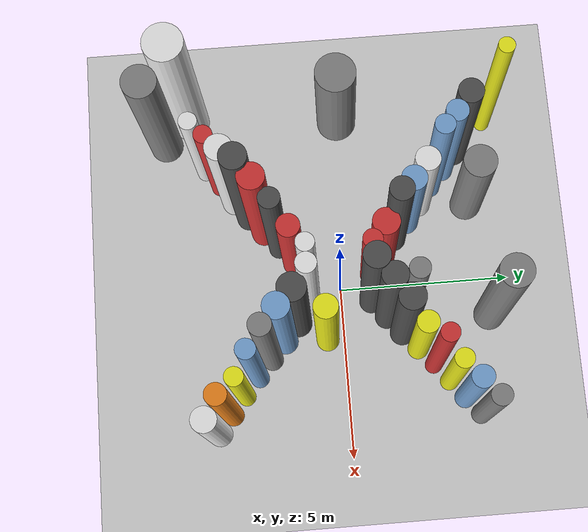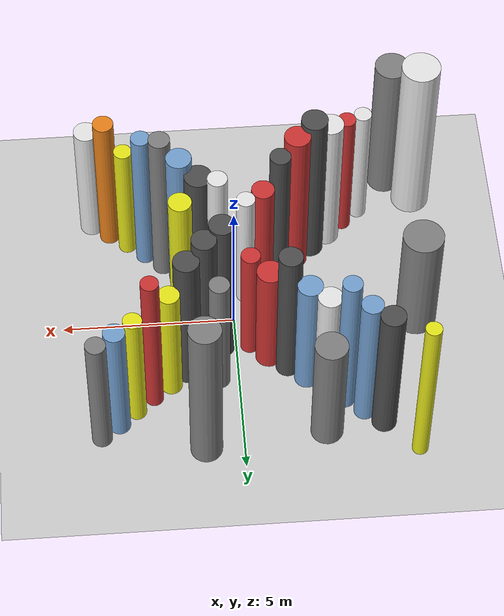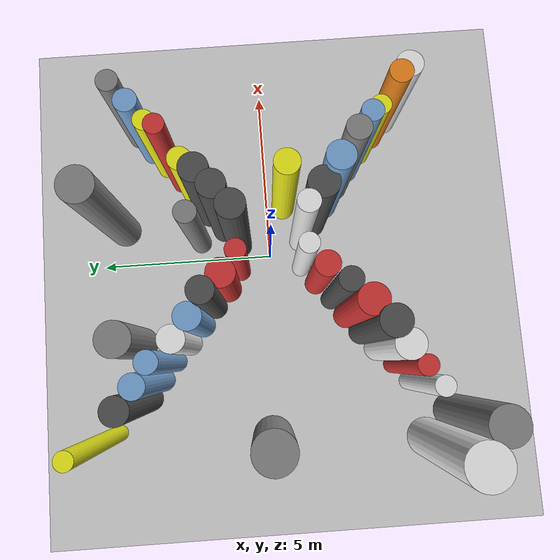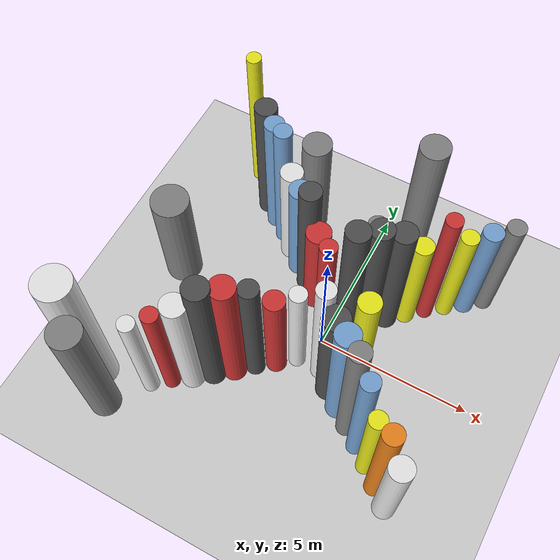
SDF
<?xml version='1.0'?>
<sdf version='1.6'>
  <world name='routeA_rl_v1__dense_recovery__rl_val__bottleneck_corridor__000101'>
    <!-- Sun light -->
    <light name='sun' type='directional'>
      <cast_shadows>1</cast_shadows>
      <pose>0 0 10 0 0 0</pose>
      <diffuse>0.8 0.8 0.8 1</diffuse>
      <specular>0.2 0.2 0.2 1</specular>
      <attenuation>
        <range>1000</range>
        <constant>0.9</constant>
        <linear>0.01</linear>
        <quadratic>0.001</quadratic>
      </attenuation>
      <direction>-0.5 0.1 -0.9</direction>
    </light>

    <!-- Ground plane -->
    <model name='ground_plane'>
      <static>1</static>
      <link name='link'>
        <collision name='collision'>
          <geometry>
            <plane>
              <normal>0 0 1</normal>
              <size>100 100</size>
            </plane>
          </geometry>
          <surface>
            <contact>
              <collide_bitmask>65535</collide_bitmask>
              <ode/>
            </contact>
            <friction>
              <ode>
                <mu>100</mu>
                <mu2>50</mu2>
              </ode>
              <torsional><ode/></torsional>
            </friction>
            <bounce/>
          </surface>
          <max_contacts>10</max_contacts>
        </collision>
        <visual name='visual'>
          <cast_shadows>0</cast_shadows>
          <geometry>
            <plane>
              <normal>0 0 1</normal>
              <size>100 100</size>
            </plane>
          </geometry>
          <material>
            <script>
              <uri>file://media/materials/scripts/gazebo.material</uri>
              <n>Gazebo/Grey</n>
            </script>
          </material>
        </visual>
      </link>
    </model>

    <!-- Environment -->
    <magnetic_field>6e-06 2.3e-05 -4.2e-05</magnetic_field>
    <atmosphere type='adiabatic'/>
    <physics name='default_physics' default='0' type='ode'>
      <gravity>0 0 -9.8</gravity>
      <max_step_size>0.004</max_step_size>
      <real_time_factor>1</real_time_factor>
      <real_time_update_rate>250</real_time_update_rate>
    </physics>
    <scene>
      <ambient>0.4 0.4 0.4 1</ambient>
      <background>0.7 0.7 0.7 1</background>
      <shadows>1</shadows>
    </scene>
    <wind/>
    <spherical_coordinates>
      <surface_model>EARTH_WGS84</surface_model>
      <latitude_deg>0</latitude_deg>
      <longitude_deg>0</longitude_deg>
      <elevation>0</elevation>
      <heading_deg>0</heading_deg>
    </spherical_coordinates>

    <!-- ============ OBSTACLES (40) ============ -->
    <model name='funnel_l_0'>
      <static>1</static>
      <link name='link'>
        <visual name='visual'>
          <geometry>
            <cylinder>
              <radius>0.2576</radius>
              <length>4.5161</length>
            </cylinder>
          </geometry>
          <material>
            <script>
              <n>Gazebo/White</n>
              <uri>file://media/materials/scripts/gazebo.material</uri>
            </script>
            <ambient>0.9 0.9 0.9 1</ambient>
          </material>
        </visual>
        <collision name='collision'>
          <geometry>
            <cylinder>
              <radius>0.2576</radius>
              <length>4.5161</length>
            </cylinder>
          </geometry>
          <max_contacts>10</max_contacts>
          <surface>
            <contact><ode/></contact>
            <bounce/>
            <friction>
              <ode><mu>1</mu><mu2>1</mu2></ode>
              <torsional><ode/></torsional>
            </friction>
          </surface>
        </collision>
      </link>
      <pose>-4.0000 -3.8000 2.2580 0 0 0.0000</pose>
    </model>

    <model name='funnel_r_0'>
      <static>1</static>
      <link name='link'>
        <visual name='visual'>
          <geometry>
            <cylinder>
              <radius>0.3536</radius>
              <length>5.1738</length>
            </cylinder>
          </geometry>
          <material>
            <script>
              <n>Gazebo/DarkGrey</n>
              <uri>file://media/materials/scripts/gazebo.material</uri>
            </script>
            <ambient>0.3 0.3 0.3 1</ambient>
          </material>
        </visual>
        <collision name='collision'>
          <geometry>
            <cylinder>
              <radius>0.3536</radius>
              <length>5.1738</length>
            </cylinder>
          </geometry>
          <max_contacts>10</max_contacts>
          <surface>
            <contact><ode/></contact>
            <bounce/>
            <friction>
              <ode><mu>1</mu><mu2>1</mu2></ode>
              <torsional><ode/></torsional>
            </friction>
          </surface>
        </collision>
      </link>
      <pose>-4.0000 3.8000 2.5869 0 0 0.0000</pose>
    </model>

    <model name='funnel_l_1'>
      <static>1</static>
      <link name='link'>
        <visual name='visual'>
          <geometry>
            <cylinder>
              <radius>0.2592</radius>
              <length>4.8091</length>
            </cylinder>
          </geometry>
          <material>
            <script>
              <n>Gazebo/Red</n>
              <uri>file://media/materials/scripts/gazebo.material</uri>
            </script>
            <ambient>0.8 0.2 0.2 1</ambient>
          </material>
        </visual>
        <collision name='collision'>
          <geometry>
            <cylinder>
              <radius>0.2592</radius>
              <length>4.8091</length>
            </cylinder>
          </geometry>
          <max_contacts>10</max_contacts>
          <surface>
            <contact><ode/></contact>
            <bounce/>
            <friction>
              <ode><mu>1</mu><mu2>1</mu2></ode>
              <torsional><ode/></torsional>
            </friction>
          </surface>
        </collision>
      </link>
      <pose>-3.4857 -3.3857 2.4045 0 0 0.0000</pose>
    </model>

    <model name='funnel_r_1'>
      <static>1</static>
      <link name='link'>
        <visual name='visual'>
          <geometry>
            <cylinder>
              <radius>0.3136</radius>
              <length>5.1695</length>
            </cylinder>
          </geometry>
          <material>
            <script>
              <n>Gazebo/Blue</n>
              <uri>file://media/materials/scripts/gazebo.material</uri>
            </script>
            <ambient>0.447 0.624 0.812 1</ambient>
          </material>
        </visual>
        <collision name='collision'>
          <geometry>
            <cylinder>
              <radius>0.3136</radius>
              <length>5.1695</length>
            </cylinder>
          </geometry>
          <max_contacts>10</max_contacts>
          <surface>
            <contact><ode/></contact>
            <bounce/>
            <friction>
              <ode><mu>1</mu><mu2>1</mu2></ode>
              <torsional><ode/></torsional>
            </friction>
          </surface>
        </collision>
      </link>
      <pose>-3.4857 3.3857 2.5848 0 0 0.0000</pose>
    </model>

    <model name='funnel_l_2'>
      <static>1</static>
      <link name='link'>
        <visual name='visual'>
          <geometry>
            <cylinder>
              <radius>0.3794</radius>
              <length>5.1359</length>
            </cylinder>
          </geometry>
          <material>
            <script>
              <n>Gazebo/White</n>
              <uri>file://media/materials/scripts/gazebo.material</uri>
            </script>
            <ambient>0.9 0.9 0.9 1</ambient>
          </material>
        </visual>
        <collision name='collision'>
          <geometry>
            <cylinder>
              <radius>0.3794</radius>
              <length>5.1359</length>
            </cylinder>
          </geometry>
          <max_contacts>10</max_contacts>
          <surface>
            <contact><ode/></contact>
            <bounce/>
            <friction>
              <ode><mu>1</mu><mu2>1</mu2></ode>
              <torsional><ode/></torsional>
            </friction>
          </surface>
        </collision>
      </link>
      <pose>-2.9714 -2.9714 2.5680 0 0 0.0000</pose>
    </model>

    <model name='funnel_r_2'>
      <static>1</static>
      <link name='link'>
        <visual name='visual'>
          <geometry>
            <cylinder>
              <radius>0.2806</radius>
              <length>5.6014</length>
            </cylinder>
          </geometry>
          <material>
            <script>
              <n>Gazebo/Blue</n>
              <uri>file://media/materials/scripts/gazebo.material</uri>
            </script>
            <ambient>0.447 0.624 0.812 1</ambient>
          </material>
        </visual>
        <collision name='collision'>
          <geometry>
            <cylinder>
              <radius>0.2806</radius>
              <length>5.6014</length>
            </cylinder>
          </geometry>
          <max_contacts>10</max_contacts>
          <surface>
            <contact><ode/></contact>
            <bounce/>
            <friction>
              <ode><mu>1</mu><mu2>1</mu2></ode>
              <torsional><ode/></torsional>
            </friction>
          </surface>
        </collision>
      </link>
      <pose>-2.9714 2.9714 2.8007 0 0 0.0000</pose>
    </model>

    <model name='funnel_l_3'>
      <static>1</static>
      <link name='link'>
        <visual name='visual'>
          <geometry>
            <cylinder>
              <radius>0.3819</radius>
              <length>5.8641</length>
            </cylinder>
          </geometry>
          <material>
            <script>
              <n>Gazebo/DarkGrey</n>
              <uri>file://media/materials/scripts/gazebo.material</uri>
            </script>
            <ambient>0.3 0.3 0.3 1</ambient>
          </material>
        </visual>
        <collision name='collision'>
          <geometry>
            <cylinder>
              <radius>0.3819</radius>
              <length>5.8641</length>
            </cylinder>
          </geometry>
          <max_contacts>10</max_contacts>
          <surface>
            <contact><ode/></contact>
            <bounce/>
            <friction>
              <ode><mu>1</mu><mu2>1</mu2></ode>
              <torsional><ode/></torsional>
            </friction>
          </surface>
        </collision>
      </link>
      <pose>-2.4571 -2.5571 2.9321 0 0 0.0000</pose>
    </model>

    <model name='funnel_r_3'>
      <static>1</static>
      <link name='link'>
        <visual name='visual'>
          <geometry>
            <cylinder>
              <radius>0.3521</radius>
              <length>4.4642</length>
            </cylinder>
          </geometry>
          <material>
            <script>
              <n>Gazebo/White</n>
              <uri>file://media/materials/scripts/gazebo.material</uri>
            </script>
            <ambient>0.9 0.9 0.9 1</ambient>
          </material>
        </visual>
        <collision name='collision'>
          <geometry>
            <cylinder>
              <radius>0.3521</radius>
              <length>4.4642</length>
            </cylinder>
          </geometry>
          <max_contacts>10</max_contacts>
          <surface>
            <contact><ode/></contact>
            <bounce/>
            <friction>
              <ode><mu>1</mu><mu2>1</mu2></ode>
              <torsional><ode/></torsional>
            </friction>
          </surface>
        </collision>
      </link>
      <pose>-2.4571 2.5571 2.2321 0 0 0.0000</pose>
    </model>

    <model name='funnel_l_4'>
      <static>1</static>
      <link name='link'>
        <visual name='visual'>
          <geometry>
            <cylinder>
              <radius>0.3793</radius>
              <length>5.6824</length>
            </cylinder>
          </geometry>
          <material>
            <script>
              <n>Gazebo/Red</n>
              <uri>file://media/materials/scripts/gazebo.material</uri>
            </script>
            <ambient>0.8 0.2 0.2 1</ambient>
          </material>
        </visual>
        <collision name='collision'>
          <geometry>
            <cylinder>
              <radius>0.3793</radius>
              <length>5.6824</length>
            </cylinder>
          </geometry>
          <max_contacts>10</max_contacts>
          <surface>
            <contact><ode/></contact>
            <bounce/>
            <friction>
              <ode><mu>1</mu><mu2>1</mu2></ode>
              <torsional><ode/></torsional>
            </friction>
          </surface>
        </collision>
      </link>
      <pose>-1.9429 -2.1429 2.8412 0 0 0.0000</pose>
    </model>

    <model name='funnel_r_4'>
      <static>1</static>
      <link name='link'>
        <visual name='visual'>
          <geometry>
            <cylinder>
              <radius>0.3583</radius>
              <length>4.4724</length>
            </cylinder>
          </geometry>
          <material>
            <script>
              <n>Gazebo/Blue</n>
              <uri>file://media/materials/scripts/gazebo.material</uri>
            </script>
            <ambient>0.447 0.624 0.812 1</ambient>
          </material>
        </visual>
        <collision name='collision'>
          <geometry>
            <cylinder>
              <radius>0.3583</radius>
              <length>4.4724</length>
            </cylinder>
          </geometry>
          <max_contacts>10</max_contacts>
          <surface>
            <contact><ode/></contact>
            <bounce/>
            <friction>
              <ode><mu>1</mu><mu2>1</mu2></ode>
              <torsional><ode/></torsional>
            </friction>
          </surface>
        </collision>
      </link>
      <pose>-1.9429 2.1429 2.2362 0 0 0.0000</pose>
    </model>

    <model name='funnel_l_5'>
      <static>1</static>
      <link name='link'>
        <visual name='visual'>
          <geometry>
            <cylinder>
              <radius>0.3016</radius>
              <length>5.3567</length>
            </cylinder>
          </geometry>
          <material>
            <script>
              <n>Gazebo/DarkGrey</n>
              <uri>file://media/materials/scripts/gazebo.material</uri>
            </script>
            <ambient>0.3 0.3 0.3 1</ambient>
          </material>
        </visual>
        <collision name='collision'>
          <geometry>
            <cylinder>
              <radius>0.3016</radius>
              <length>5.3567</length>
            </cylinder>
          </geometry>
          <max_contacts>10</max_contacts>
          <surface>
            <contact><ode/></contact>
            <bounce/>
            <friction>
              <ode><mu>1</mu><mu2>1</mu2></ode>
              <torsional><ode/></torsional>
            </friction>
          </surface>
        </collision>
      </link>
      <pose>-1.4286 -1.7286 2.6783 0 0 0.0000</pose>
    </model>

    <model name='funnel_r_5'>
      <static>1</static>
      <link name='link'>
        <visual name='visual'>
          <geometry>
            <cylinder>
              <radius>0.3402</radius>
              <length>5.2886</length>
            </cylinder>
          </geometry>
          <material>
            <script>
              <n>Gazebo/DarkGrey</n>
              <uri>file://media/materials/scripts/gazebo.material</uri>
            </script>
            <ambient>0.3 0.3 0.3 1</ambient>
          </material>
        </visual>
        <collision name='collision'>
          <geometry>
            <cylinder>
              <radius>0.3402</radius>
              <length>5.2886</length>
            </cylinder>
          </geometry>
          <max_contacts>10</max_contacts>
          <surface>
            <contact><ode/></contact>
            <bounce/>
            <friction>
              <ode><mu>1</mu><mu2>1</mu2></ode>
              <torsional><ode/></torsional>
            </friction>
          </surface>
        </collision>
      </link>
      <pose>-1.4286 1.7286 2.6443 0 0 0.0000</pose>
    </model>

    <model name='funnel_l_6'>
      <static>1</static>
      <link name='link'>
        <visual name='visual'>
          <geometry>
            <cylinder>
              <radius>0.3293</radius>
              <length>4.4319</length>
            </cylinder>
          </geometry>
          <material>
            <script>
              <n>Gazebo/Red</n>
              <uri>file://media/materials/scripts/gazebo.material</uri>
            </script>
            <ambient>0.8 0.2 0.2 1</ambient>
          </material>
        </visual>
        <collision name='collision'>
          <geometry>
            <cylinder>
              <radius>0.3293</radius>
              <length>4.4319</length>
            </cylinder>
          </geometry>
          <max_contacts>10</max_contacts>
          <surface>
            <contact><ode/></contact>
            <bounce/>
            <friction>
              <ode><mu>1</mu><mu2>1</mu2></ode>
              <torsional><ode/></torsional>
            </friction>
          </surface>
        </collision>
      </link>
      <pose>-0.9143 -1.3143 2.2159 0 0 0.0000</pose>
    </model>

    <model name='funnel_r_6'>
      <static>1</static>
      <link name='link'>
        <visual name='visual'>
          <geometry>
            <cylinder>
              <radius>0.3850</radius>
              <length>4.1006</length>
            </cylinder>
          </geometry>
          <material>
            <script>
              <n>Gazebo/Red</n>
              <uri>file://media/materials/scripts/gazebo.material</uri>
            </script>
            <ambient>0.8 0.2 0.2 1</ambient>
          </material>
        </visual>
        <collision name='collision'>
          <geometry>
            <cylinder>
              <radius>0.3850</radius>
              <length>4.1006</length>
            </cylinder>
          </geometry>
          <max_contacts>10</max_contacts>
          <surface>
            <contact><ode/></contact>
            <bounce/>
            <friction>
              <ode><mu>1</mu><mu2>1</mu2></ode>
              <torsional><ode/></torsional>
            </friction>
          </surface>
        </collision>
      </link>
      <pose>-0.9143 1.3143 2.0503 0 0 0.0000</pose>
    </model>

    <model name='funnel_l_7'>
      <static>1</static>
      <link name='link'>
        <visual name='visual'>
          <geometry>
            <cylinder>
              <radius>0.2663</radius>
              <length>4.5700</length>
            </cylinder>
          </geometry>
          <material>
            <script>
              <n>Gazebo/White</n>
              <uri>file://media/materials/scripts/gazebo.material</uri>
            </script>
            <ambient>0.9 0.9 0.9 1</ambient>
          </material>
        </visual>
        <collision name='collision'>
          <geometry>
            <cylinder>
              <radius>0.2663</radius>
              <length>4.5700</length>
            </cylinder>
          </geometry>
          <max_contacts>10</max_contacts>
          <surface>
            <contact><ode/></contact>
            <bounce/>
            <friction>
              <ode><mu>1</mu><mu2>1</mu2></ode>
              <torsional><ode/></torsional>
            </friction>
          </surface>
        </collision>
      </link>
      <pose>-0.4000 -0.9000 2.2850 0 0 0.0000</pose>
    </model>

    <model name='funnel_r_7'>
      <static>1</static>
      <link name='link'>
        <visual name='visual'>
          <geometry>
            <cylinder>
              <radius>0.2768</radius>
              <length>4.3424</length>
            </cylinder>
          </geometry>
          <material>
            <script>
              <n>Gazebo/Red</n>
              <uri>file://media/materials/scripts/gazebo.material</uri>
            </script>
            <ambient>0.8 0.2 0.2 1</ambient>
          </material>
        </visual>
        <collision name='collision'>
          <geometry>
            <cylinder>
              <radius>0.2768</radius>
              <length>4.3424</length>
            </cylinder>
          </geometry>
          <max_contacts>10</max_contacts>
          <surface>
            <contact><ode/></contact>
            <bounce/>
            <friction>
              <ode><mu>1</mu><mu2>1</mu2></ode>
              <torsional><ode/></torsional>
            </friction>
          </surface>
        </collision>
      </link>
      <pose>-0.4000 0.9000 2.1712 0 0 0.0000</pose>
    </model>

    <model name='funnel_out_l_0'>
      <static>1</static>
      <link name='link'>
        <visual name='visual'>
          <geometry>
            <cylinder>
              <radius>0.2866</radius>
              <length>5.5627</length>
            </cylinder>
          </geometry>
          <material>
            <script>
              <n>Gazebo/White</n>
              <uri>file://media/materials/scripts/gazebo.material</uri>
            </script>
            <ambient>0.9 0.9 0.9 1</ambient>
          </material>
        </visual>
        <collision name='collision'>
          <geometry>
            <cylinder>
              <radius>0.2866</radius>
              <length>5.5627</length>
            </cylinder>
          </geometry>
          <max_contacts>10</max_contacts>
          <surface>
            <contact><ode/></contact>
            <bounce/>
            <friction>
              <ode><mu>1</mu><mu2>1</mu2></ode>
              <torsional><ode/></torsional>
            </friction>
          </surface>
        </collision>
      </link>
      <pose>0.4000 -0.9000 2.7813 0 0 0.0000</pose>
    </model>

    <model name='funnel_out_r_0'>
      <static>1</static>
      <link name='link'>
        <visual name='visual'>
          <geometry>
            <cylinder>
              <radius>0.3644</radius>
              <length>5.8134</length>
            </cylinder>
          </geometry>
          <material>
            <script>
              <n>Gazebo/DarkGrey</n>
              <uri>file://media/materials/scripts/gazebo.material</uri>
            </script>
            <ambient>0.3 0.3 0.3 1</ambient>
          </material>
        </visual>
        <collision name='collision'>
          <geometry>
            <cylinder>
              <radius>0.3644</radius>
              <length>5.8134</length>
            </cylinder>
          </geometry>
          <max_contacts>10</max_contacts>
          <surface>
            <contact><ode/></contact>
            <bounce/>
            <friction>
              <ode><mu>1</mu><mu2>1</mu2></ode>
              <torsional><ode/></torsional>
            </friction>
          </surface>
        </collision>
      </link>
      <pose>0.4000 0.9000 2.9067 0 0 0.0000</pose>
    </model>

    <model name='funnel_out_l_1'>
      <static>1</static>
      <link name='link'>
        <visual name='visual'>
          <geometry>
            <cylinder>
              <radius>0.3992</radius>
              <length>5.2027</length>
            </cylinder>
          </geometry>
          <material>
            <script>
              <n>Gazebo/DarkGrey</n>
              <uri>file://media/materials/scripts/gazebo.material</uri>
            </script>
            <ambient>0.3 0.3 0.3 1</ambient>
          </material>
        </visual>
        <collision name='collision'>
          <geometry>
            <cylinder>
              <radius>0.3992</radius>
              <length>5.2027</length>
            </cylinder>
          </geometry>
          <max_contacts>10</max_contacts>
          <surface>
            <contact><ode/></contact>
            <bounce/>
            <friction>
              <ode><mu>1</mu><mu2>1</mu2></ode>
              <torsional><ode/></torsional>
            </friction>
          </surface>
        </collision>
      </link>
      <pose>0.9143 -1.3143 2.6013 0 0 0.0000</pose>
    </model>

    <model name='funnel_out_r_1'>
      <static>1</static>
      <link name='link'>
        <visual name='visual'>
          <geometry>
            <cylinder>
              <radius>0.3561</radius>
              <length>5.7254</length>
            </cylinder>
          </geometry>
          <material>
            <script>
              <n>Gazebo/DarkGrey</n>
              <uri>file://media/materials/scripts/gazebo.material</uri>
            </script>
            <ambient>0.3 0.3 0.3 1</ambient>
          </material>
        </visual>
        <collision name='collision'>
          <geometry>
            <cylinder>
              <radius>0.3561</radius>
              <length>5.7254</length>
            </cylinder>
          </geometry>
          <max_contacts>10</max_contacts>
          <surface>
            <contact><ode/></contact>
            <bounce/>
            <friction>
              <ode><mu>1</mu><mu2>1</mu2></ode>
              <torsional><ode/></torsional>
            </friction>
          </surface>
        </collision>
      </link>
      <pose>0.9143 1.3143 2.8627 0 0 0.0000</pose>
    </model>

    <model name='funnel_out_l_2'>
      <static>1</static>
      <link name='link'>
        <visual name='visual'>
          <geometry>
            <cylinder>
              <radius>0.3671</radius>
              <length>5.5286</length>
            </cylinder>
          </geometry>
          <material>
            <script>
              <n>Gazebo/Blue</n>
              <uri>file://media/materials/scripts/gazebo.material</uri>
            </script>
            <ambient>0.447 0.624 0.812 1</ambient>
          </material>
        </visual>
        <collision name='collision'>
          <geometry>
            <cylinder>
              <radius>0.3671</radius>
              <length>5.5286</length>
            </cylinder>
          </geometry>
          <max_contacts>10</max_contacts>
          <surface>
            <contact><ode/></contact>
            <bounce/>
            <friction>
              <ode><mu>1</mu><mu2>1</mu2></ode>
              <torsional><ode/></torsional>
            </friction>
          </surface>
        </collision>
      </link>
      <pose>1.4286 -1.7286 2.7643 0 0 0.0000</pose>
    </model>

    <model name='funnel_out_r_2'>
      <static>1</static>
      <link name='link'>
        <visual name='visual'>
          <geometry>
            <cylinder>
              <radius>0.3701</radius>
              <length>5.3523</length>
            </cylinder>
          </geometry>
          <material>
            <script>
              <n>Gazebo/DarkGrey</n>
              <uri>file://media/materials/scripts/gazebo.material</uri>
            </script>
            <ambient>0.3 0.3 0.3 1</ambient>
          </material>
        </visual>
        <collision name='collision'>
          <geometry>
            <cylinder>
              <radius>0.3701</radius>
              <length>5.3523</length>
            </cylinder>
          </geometry>
          <max_contacts>10</max_contacts>
          <surface>
            <contact><ode/></contact>
            <bounce/>
            <friction>
              <ode><mu>1</mu><mu2>1</mu2></ode>
              <torsional><ode/></torsional>
            </friction>
          </surface>
        </collision>
      </link>
      <pose>1.4286 1.7286 2.6761 0 0 0.0000</pose>
    </model>

    <model name='funnel_out_l_3'>
      <static>1</static>
      <link name='link'>
        <visual name='visual'>
          <geometry>
            <cylinder>
              <radius>0.3093</radius>
              <length>5.8774</length>
            </cylinder>
          </geometry>
          <material>
            <script>
              <n>Gazebo/Grey</n>
              <uri>file://media/materials/scripts/gazebo.material</uri>
            </script>
            <ambient>0.5 0.5 0.5 1</ambient>
          </material>
        </visual>
        <collision name='collision'>
          <geometry>
            <cylinder>
              <radius>0.3093</radius>
              <length>5.8774</length>
            </cylinder>
          </geometry>
          <max_contacts>10</max_contacts>
          <surface>
            <contact><ode/></contact>
            <bounce/>
            <friction>
              <ode><mu>1</mu><mu2>1</mu2></ode>
              <torsional><ode/></torsional>
            </friction>
          </surface>
        </collision>
      </link>
      <pose>1.9429 -2.1429 2.9387 0 0 0.0000</pose>
    </model>

    <model name='funnel_out_r_3'>
      <static>1</static>
      <link name='link'>
        <visual name='visual'>
          <geometry>
            <cylinder>
              <radius>0.3078</radius>
              <length>4.4324</length>
            </cylinder>
          </geometry>
          <material>
            <script>
              <n>Gazebo/Yellow</n>
              <uri>file://media/materials/scripts/gazebo.material</uri>
            </script>
            <ambient>0.9 0.9 0.1 1</ambient>
          </material>
        </visual>
        <collision name='collision'>
          <geometry>
            <cylinder>
              <radius>0.3078</radius>
              <length>4.4324</length>
            </cylinder>
          </geometry>
          <max_contacts>10</max_contacts>
          <surface>
            <contact><ode/></contact>
            <bounce/>
            <friction>
              <ode><mu>1</mu><mu2>1</mu2></ode>
              <torsional><ode/></torsional>
            </friction>
          </surface>
        </collision>
      </link>
      <pose>1.9429 2.1429 2.2162 0 0 0.0000</pose>
    </model>

    <model name='funnel_out_l_4'>
      <static>1</static>
      <link name='link'>
        <visual name='visual'>
          <geometry>
            <cylinder>
              <radius>0.2750</radius>
              <length>5.4844</length>
            </cylinder>
          </geometry>
          <material>
            <script>
              <n>Gazebo/Blue</n>
              <uri>file://media/materials/scripts/gazebo.material</uri>
            </script>
            <ambient>0.447 0.624 0.812 1</ambient>
          </material>
        </visual>
        <collision name='collision'>
          <geometry>
            <cylinder>
              <radius>0.2750</radius>
              <length>5.4844</length>
            </cylinder>
          </geometry>
          <max_contacts>10</max_contacts>
          <surface>
            <contact><ode/></contact>
            <bounce/>
            <friction>
              <ode><mu>1</mu><mu2>1</mu2></ode>
              <torsional><ode/></torsional>
            </friction>
          </surface>
        </collision>
      </link>
      <pose>2.4571 -2.5571 2.7422 0 0 0.0000</pose>
    </model>

    <model name='funnel_out_r_4'>
      <static>1</static>
      <link name='link'>
        <visual name='visual'>
          <geometry>
            <cylinder>
              <radius>0.2562</radius>
              <length>5.5814</length>
            </cylinder>
          </geometry>
          <material>
            <script>
              <n>Gazebo/Red</n>
              <uri>file://media/materials/scripts/gazebo.material</uri>
            </script>
            <ambient>0.8 0.2 0.2 1</ambient>
          </material>
        </visual>
        <collision name='collision'>
          <geometry>
            <cylinder>
              <radius>0.2562</radius>
              <length>5.5814</length>
            </cylinder>
          </geometry>
          <max_contacts>10</max_contacts>
          <surface>
            <contact><ode/></contact>
            <bounce/>
            <friction>
              <ode><mu>1</mu><mu2>1</mu2></ode>
              <torsional><ode/></torsional>
            </friction>
          </surface>
        </collision>
      </link>
      <pose>2.4571 2.5571 2.7907 0 0 0.0000</pose>
    </model>

    <model name='funnel_out_l_5'>
      <static>1</static>
      <link name='link'>
        <visual name='visual'>
          <geometry>
            <cylinder>
              <radius>0.2642</radius>
              <length>4.4364</length>
            </cylinder>
          </geometry>
          <material>
            <script>
              <n>Gazebo/Yellow</n>
              <uri>file://media/materials/scripts/gazebo.material</uri>
            </script>
            <ambient>0.9 0.9 0.1 1</ambient>
          </material>
        </visual>
        <collision name='collision'>
          <geometry>
            <cylinder>
              <radius>0.2642</radius>
              <length>4.4364</length>
            </cylinder>
          </geometry>
          <max_contacts>10</max_contacts>
          <surface>
            <contact><ode/></contact>
            <bounce/>
            <friction>
              <ode><mu>1</mu><mu2>1</mu2></ode>
              <torsional><ode/></torsional>
            </friction>
          </surface>
        </collision>
      </link>
      <pose>2.9714 -2.9714 2.2182 0 0 0.0000</pose>
    </model>

    <model name='funnel_out_r_5'>
      <static>1</static>
      <link name='link'>
        <visual name='visual'>
          <geometry>
            <cylinder>
              <radius>0.2714</radius>
              <length>4.4904</length>
            </cylinder>
          </geometry>
          <material>
            <script>
              <n>Gazebo/Yellow</n>
              <uri>file://media/materials/scripts/gazebo.material</uri>
            </script>
            <ambient>0.9 0.9 0.1 1</ambient>
          </material>
        </visual>
        <collision name='collision'>
          <geometry>
            <cylinder>
              <radius>0.2714</radius>
              <length>4.4904</length>
            </cylinder>
          </geometry>
          <max_contacts>10</max_contacts>
          <surface>
            <contact><ode/></contact>
            <bounce/>
            <friction>
              <ode><mu>1</mu><mu2>1</mu2></ode>
              <torsional><ode/></torsional>
            </friction>
          </surface>
        </collision>
      </link>
      <pose>2.9714 2.9714 2.2452 0 0 0.0000</pose>
    </model>

    <model name='funnel_out_l_6'>
      <static>1</static>
      <link name='link'>
        <visual name='visual'>
          <geometry>
            <cylinder>
              <radius>0.2993</radius>
              <length>5.2123</length>
            </cylinder>
          </geometry>
          <material>
            <script>
              <n>Gazebo/Orange</n>
              <uri>file://media/materials/scripts/gazebo.material</uri>
            </script>
            <ambient>0.9 0.5 0.1 1</ambient>
          </material>
        </visual>
        <collision name='collision'>
          <geometry>
            <cylinder>
              <radius>0.2993</radius>
              <length>5.2123</length>
            </cylinder>
          </geometry>
          <max_contacts>10</max_contacts>
          <surface>
            <contact><ode/></contact>
            <bounce/>
            <friction>
              <ode><mu>1</mu><mu2>1</mu2></ode>
              <torsional><ode/></torsional>
            </friction>
          </surface>
        </collision>
      </link>
      <pose>3.4857 -3.3857 2.6061 0 0 0.0000</pose>
    </model>

    <model name='funnel_out_r_6'>
      <static>1</static>
      <link name='link'>
        <visual name='visual'>
          <geometry>
            <cylinder>
              <radius>0.3107</radius>
              <length>4.5613</length>
            </cylinder>
          </geometry>
          <material>
            <script>
              <n>Gazebo/Blue</n>
              <uri>file://media/materials/scripts/gazebo.material</uri>
            </script>
            <ambient>0.447 0.624 0.812 1</ambient>
          </material>
        </visual>
        <collision name='collision'>
          <geometry>
            <cylinder>
              <radius>0.3107</radius>
              <length>4.5613</length>
            </cylinder>
          </geometry>
          <max_contacts>10</max_contacts>
          <surface>
            <contact><ode/></contact>
            <bounce/>
            <friction>
              <ode><mu>1</mu><mu2>1</mu2></ode>
              <torsional><ode/></torsional>
            </friction>
          </surface>
        </collision>
      </link>
      <pose>3.4857 3.3857 2.2806 0 0 0.0000</pose>
    </model>

    <model name='funnel_out_l_7'>
      <static>1</static>
      <link name='link'>
        <visual name='visual'>
          <geometry>
            <cylinder>
              <radius>0.3523</radius>
              <length>4.4170</length>
            </cylinder>
          </geometry>
          <material>
            <script>
              <n>Gazebo/White</n>
              <uri>file://media/materials/scripts/gazebo.material</uri>
            </script>
            <ambient>0.9 0.9 0.9 1</ambient>
          </material>
        </visual>
        <collision name='collision'>
          <geometry>
            <cylinder>
              <radius>0.3523</radius>
              <length>4.4170</length>
            </cylinder>
          </geometry>
          <max_contacts>10</max_contacts>
          <surface>
            <contact><ode/></contact>
            <bounce/>
            <friction>
              <ode><mu>1</mu><mu2>1</mu2></ode>
              <torsional><ode/></torsional>
            </friction>
          </surface>
        </collision>
      </link>
      <pose>4.0000 -3.8000 2.2085 0 0 0.0000</pose>
    </model>

    <model name='funnel_out_r_7'>
      <static>1</static>
      <link name='link'>
        <visual name='visual'>
          <geometry>
            <cylinder>
              <radius>0.2885</radius>
              <length>4.6187</length>
            </cylinder>
          </geometry>
          <material>
            <script>
              <n>Gazebo/Grey</n>
              <uri>file://media/materials/scripts/gazebo.material</uri>
            </script>
            <ambient>0.5 0.5 0.5 1</ambient>
          </material>
        </visual>
        <collision name='collision'>
          <geometry>
            <cylinder>
              <radius>0.2885</radius>
              <length>4.6187</length>
            </cylinder>
          </geometry>
          <max_contacts>10</max_contacts>
          <surface>
            <contact><ode/></contact>
            <bounce/>
            <friction>
              <ode><mu>1</mu><mu2>1</mu2></ode>
              <torsional><ode/></torsional>
            </friction>
          </surface>
        </collision>
      </link>
      <pose>4.0000 3.8000 2.3093 0 0 0.0000</pose>
    </model>

    <model name='bn_scatter_0'>
      <static>1</static>
      <link name='link'>
        <visual name='visual'>
          <geometry>
            <cylinder>
              <radius>0.3346</radius>
              <length>5.1396</length>
            </cylinder>
          </geometry>
          <material>
            <script>
              <n>Gazebo/Yellow</n>
              <uri>file://media/materials/scripts/gazebo.material</uri>
            </script>
            <ambient>0.9 0.9 0.1 1</ambient>
          </material>
        </visual>
        <collision name='collision'>
          <geometry>
            <cylinder>
              <radius>0.3346</radius>
              <length>5.1396</length>
            </cylinder>
          </geometry>
          <max_contacts>10</max_contacts>
          <surface>
            <contact><ode/></contact>
            <bounce/>
            <friction>
              <ode><mu>1</mu><mu2>1</mu2></ode>
              <torsional><ode/></torsional>
            </friction>
          </surface>
        </collision>
      </link>
      <pose>1.4717 -0.4838 2.5698 0 0 0.0000</pose>
    </model>

    <model name='bn_scatter_1'>
      <static>1</static>
      <link name='link'>
        <visual name='visual'>
          <geometry>
            <cylinder>
              <radius>0.4574</radius>
              <length>5.8141</length>
            </cylinder>
          </geometry>
          <material>
            <script>
              <n>Gazebo/Grey</n>
              <uri>file://media/materials/scripts/gazebo.material</uri>
            </script>
            <ambient>0.5 0.5 0.5 1</ambient>
          </material>
        </visual>
        <collision name='collision'>
          <geometry>
            <cylinder>
              <radius>0.4574</radius>
              <length>5.8141</length>
            </cylinder>
          </geometry>
          <max_contacts>10</max_contacts>
          <surface>
            <contact><ode/></contact>
            <bounce/>
            <friction>
              <ode><mu>1</mu><mu2>1</mu2></ode>
              <torsional><ode/></torsional>
            </friction>
          </surface>
        </collision>
      </link>
      <pose>1.0842 4.3431 2.9070 0 0 0.0000</pose>
    </model>

    <model name='bn_scatter_2'>
      <static>1</static>
      <link name='link'>
        <visual name='visual'>
          <geometry>
            <cylinder>
              <radius>0.2301</radius>
              <length>5.8479</length>
            </cylinder>
          </geometry>
          <material>
            <script>
              <n>Gazebo/Yellow</n>
              <uri>file://media/materials/scripts/gazebo.material</uri>
            </script>
            <ambient>0.9 0.9 0.1 1</ambient>
          </material>
        </visual>
        <collision name='collision'>
          <geometry>
            <cylinder>
              <radius>0.2301</radius>
              <length>5.8479</length>
            </cylinder>
          </geometry>
          <max_contacts>10</max_contacts>
          <surface>
            <contact><ode/></contact>
            <bounce/>
            <friction>
              <ode><mu>1</mu><mu2>1</mu2></ode>
              <torsional><ode/></torsional>
            </friction>
          </surface>
        </collision>
      </link>
      <pose>-4.9173 4.7532 2.9239 0 0 0.0000</pose>
    </model>

    <model name='bn_scatter_3'>
      <static>1</static>
      <link name='link'>
        <visual name='visual'>
          <geometry>
            <cylinder>
              <radius>0.4908</radius>
              <length>5.2272</length>
            </cylinder>
          </geometry>
          <material>
            <script>
              <n>Gazebo/Grey</n>
              <uri>file://media/materials/scripts/gazebo.material</uri>
            </script>
            <ambient>0.5 0.5 0.5 1</ambient>
          </material>
        </visual>
        <collision name='collision'>
          <geometry>
            <cylinder>
              <radius>0.4908</radius>
              <length>5.2272</length>
            </cylinder>
          </geometry>
          <max_contacts>10</max_contacts>
          <surface>
            <contact><ode/></contact>
            <bounce/>
            <friction>
              <ode><mu>1</mu><mu2>1</mu2></ode>
              <torsional><ode/></torsional>
            </friction>
          </surface>
        </collision>
      </link>
      <pose>-4.9317 -4.9534 2.6136 0 0 0.0000</pose>
    </model>

    <model name='bn_scatter_4'>
      <static>1</static>
      <link name='link'>
        <visual name='visual'>
          <geometry>
            <cylinder>
              <radius>0.5587</radius>
              <length>5.9852</length>
            </cylinder>
          </geometry>
          <material>
            <script>
              <n>Gazebo/White</n>
              <uri>file://media/materials/scripts/gazebo.material</uri>
            </script>
            <ambient>0.9 0.9 0.9 1</ambient>
          </material>
        </visual>
        <collision name='collision'>
          <geometry>
            <cylinder>
              <radius>0.5587</radius>
              <length>5.9852</length>
            </cylinder>
          </geometry>
          <max_contacts>10</max_contacts>
          <surface>
            <contact><ode/></contact>
            <bounce/>
            <friction>
              <ode><mu>1</mu><mu2>1</mu2></ode>
              <torsional><ode/></torsional>
            </friction>
          </surface>
        </collision>
      </link>
      <pose>-5.6449 -4.1763 2.9926 0 0 0.0000</pose>
    </model>

    <model name='bn_scatter_5'>
      <static>1</static>
      <link name='link'>
        <visual name='visual'>
          <geometry>
            <cylinder>
              <radius>0.2942</radius>
              <length>4.6328</length>
            </cylinder>
          </geometry>
          <material>
            <script>
              <n>Gazebo/Grey</n>
              <uri>file://media/materials/scripts/gazebo.material</uri>
            </script>
            <ambient>0.5 0.5 0.5 1</ambient>
          </material>
        </visual>
        <collision name='collision'>
          <geometry>
            <cylinder>
              <radius>0.2942</radius>
              <length>4.6328</length>
            </cylinder>
          </geometry>
          <max_contacts>10</max_contacts>
          <surface>
            <contact><ode/></contact>
            <bounce/>
            <friction>
              <ode><mu>1</mu><mu2>1</mu2></ode>
              <torsional><ode/></torsional>
            </friction>
          </surface>
        </collision>
      </link>
      <pose>0.5497 2.0468 2.3164 0 0 0.0000</pose>
    </model>

    <model name='bn_scatter_6'>
      <static>1</static>
      <link name='link'>
        <visual name='visual'>
          <geometry>
            <cylinder>
              <radius>0.5871</radius>
              <length>3.9451</length>
            </cylinder>
          </geometry>
          <material>
            <script>
              <n>Gazebo/Grey</n>
              <uri>file://media/materials/scripts/gazebo.material</uri>
            </script>
            <ambient>0.5 0.5 0.5 1</ambient>
          </material>
        </visual>
        <collision name='collision'>
          <geometry>
            <cylinder>
              <radius>0.5871</radius>
              <length>3.9451</length>
            </cylinder>
          </geometry>
          <max_contacts>10</max_contacts>
          <surface>
            <contact><ode/></contact>
            <bounce/>
            <friction>
              <ode><mu>1</mu><mu2>1</mu2></ode>
              <torsional><ode/></torsional>
            </friction>
          </surface>
        </collision>
      </link>
      <pose>-5.3113 0.2843 1.9725 0 0 0.0000</pose>
    </model>

    <model name='bn_scatter_7'>
      <static>1</static>
      <link name='link'>
        <visual name='visual'>
          <geometry>
            <cylinder>
              <radius>0.4647</radius>
              <length>4.2105</length>
            </cylinder>
          </geometry>
          <material>
            <script>
              <n>Gazebo/Grey</n>
              <uri>file://media/materials/scripts/gazebo.material</uri>
            </script>
            <ambient>0.5 0.5 0.5 1</ambient>
          </material>
        </visual>
        <collision name='collision'>
          <geometry>
            <cylinder>
              <radius>0.4647</radius>
              <length>4.2105</length>
            </cylinder>
          </geometry>
          <max_contacts>10</max_contacts>
          <surface>
            <contact><ode/></contact>
            <bounce/>
            <friction>
              <ode><mu>1</mu><mu2>1</mu2></ode>
              <torsional><ode/></torsional>
            </friction>
          </surface>
        </collision>
      </link>
      <pose>-2.3542 3.9844 2.1052 0 0 0.0000</pose>
    </model>

    <!-- GUI camera -->
    <gui fullscreen='0'>
      <camera name='user_camera'>
        <pose>-15 0 18 0 0.85 0.15</pose>
        <view_controller>orbit</view_controller>
        <projection_type>perspective</projection_type>
      </camera>
    </gui>
  </world>
</sdf>
